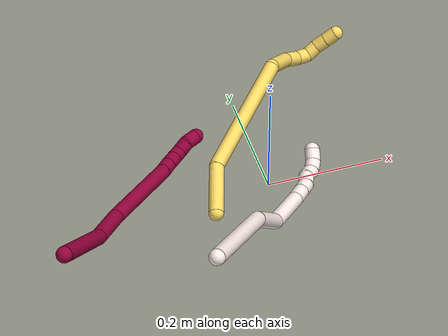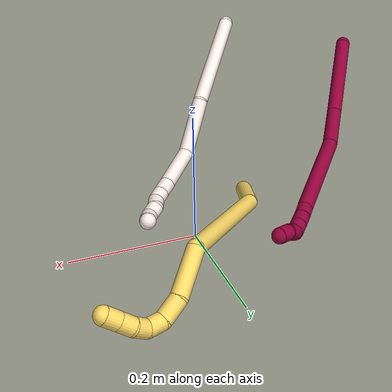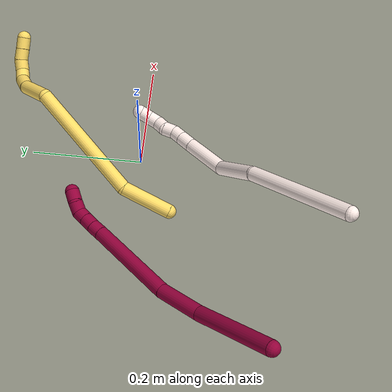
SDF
<sdf version="1.7">
 <world name="default">
  <model name="5">
   <static>0</static>
   <link name="5">
    <collision name="collision-cylinder-e_1_1_4">
     <pose>-0.000788 0.016716 0.040832 -0.388564 -0.017848 0.003512</pose>
     <geometry><cylinder><radius>0.0125</radius><length>0.088257</length></cylinder></geometry>
     <surface>
      <friction><ode><mu>1.16</mu><mu2>1.16</mu2><slip1>0</slip1><slip2>0</slip2></ode></friction>
      <contact><ode><kp>1e+06</kp><kd>1</kd><max_vel>0</max_vel><min_depth>0.001</min_depth></ode></contact>
     </surface>
    </collision>
    <visual name="visual-cylinder-e_1_1_4">
     <pose>-0.000788 0.016716 0.040832 -0.388564 -0.017848 0.003512</pose>
     <geometry><cylinder><radius>0.0125</radius><length>0.088257</length></cylinder></geometry>
     <material><ambient>1 0.858824 0.4 1</ambient></material>
    </visual>
    <collision name="collision-cylinder-e_2_4_5">
     <pose>0.023511 0.036523 0.188943 -0.028807 0.22962 -0.003322</pose>
     <geometry><cylinder><radius>0.0125</radius><length>0.220431</length></cylinder></geometry>
     <surface>
      <friction><ode><mu>1.16</mu><mu2>1.16</mu2><slip1>0</slip1><slip2>0</slip2></ode></friction>
      <contact><ode><kp>1e+06</kp><kd>1</kd><max_vel>0</max_vel><min_depth>0.001</min_depth></ode></contact>
     </surface>
    </collision>
    <visual name="visual-cylinder-e_2_4_5">
     <pose>0.023511 0.036523 0.188943 -0.028807 0.22962 -0.003322</pose>
     <geometry><cylinder><radius>0.0125</radius><length>0.220431</length></cylinder></geometry>
     <material><ambient>1 0.858824 0.4 1</ambient></material>
    </visual>
    <collision name="collision-cylinder-e_3_5_6">
     <pose>0.07541 0.051317 0.317301 -0.506794 0.838412 -0.229782</pose>
     <geometry><cylinder><radius>0.0125</radius><length>0.072118</length></cylinder></geometry>
     <surface>
      <friction><ode><mu>1.16</mu><mu2>1.16</mu2><slip1>0</slip1><slip2>0</slip2></ode></friction>
      <contact><ode><kp>1e+06</kp><kd>1</kd><max_vel>0</max_vel><min_depth>0.001</min_depth></ode></contact>
     </surface>
    </collision>
    <visual name="visual-cylinder-e_3_5_6">
     <pose>0.07541 0.051317 0.317301 -0.506794 0.838412 -0.229782</pose>
     <geometry><cylinder><radius>0.0125</radius><length>0.072118</length></cylinder></geometry>
     <material><ambient>1 0.858824 0.4 1</ambient></material>
    </visual>
    <collision name="collision-cylinder-e_4_6_7">
     <pose>0.115903 0.06347 0.347743 -0.048099 0.970127 -0.025355</pose>
     <geometry><cylinder><radius>0.0125</radius><length>0.033166</length></cylinder></geometry>
     <surface>
      <friction><ode><mu>1.16</mu><mu2>1.16</mu2><slip1>0</slip1><slip2>0</slip2></ode></friction>
      <contact><ode><kp>1e+06</kp><kd>1</kd><max_vel>0</max_vel><min_depth>0.001</min_depth></ode></contact>
     </surface>
    </collision>
    <visual name="visual-cylinder-e_4_6_7">
     <pose>0.115903 0.06347 0.347743 -0.048099 0.970127 -0.025355</pose>
     <geometry><cylinder><radius>0.0125</radius><length>0.033166</length></cylinder></geometry>
     <material><ambient>1 0.858824 0.4 1</ambient></material>
    </visual>
    <collision name="collision-cylinder-e_5_7_8">
     <pose>0.136808 0.059616 0.364794 0.510415 0.686753 0.186024</pose>
     <geometry><cylinder><radius>0.0125</radius><length>0.022791</length></cylinder></geometry>
     <surface>
      <friction><ode><mu>1.16</mu><mu2>1.16</mu2><slip1>0</slip1><slip2>0</slip2></ode></friction>
      <contact><ode><kp>1e+06</kp><kd>1</kd><max_vel>0</max_vel><min_depth>0.001</min_depth></ode></contact>
     </surface>
    </collision>
    <visual name="visual-cylinder-e_5_7_8">
     <pose>0.136808 0.059616 0.364794 0.510415 0.686753 0.186024</pose>
     <geometry><cylinder><radius>0.0125</radius><length>0.022791</length></cylinder></geometry>
     <material><ambient>1 0.858824 0.4 1</ambient></material>
    </visual>
    <collision name="collision-cylinder-e_6_8_9">
     <pose>0.144537 0.049441 0.381337 0.585448 0.047454 0.014304</pose>
     <geometry><cylinder><radius>0.0125</radius><length>0.02127</length></cylinder></geometry>
     <surface>
      <friction><ode><mu>1.16</mu><mu2>1.16</mu2><slip1>0</slip1><slip2>0</slip2></ode></friction>
      <contact><ode><kp>1e+06</kp><kd>1</kd><max_vel>0</max_vel><min_depth>0.001</min_depth></ode></contact>
     </surface>
    </collision>
    <visual name="visual-cylinder-e_6_8_9">
     <pose>0.144537 0.049441 0.381337 0.585448 0.047454 0.014304</pose>
     <geometry><cylinder><radius>0.0125</radius><length>0.02127</length></cylinder></geometry>
     <material><ambient>1 0.858824 0.4 1</ambient></material>
    </visual>
    <collision name="collision-cylinder-e_7_9_10">
     <pose>0.144869 0.035449 0.396914 0.879321 -0.016378 -0.007704</pose>
     <geometry><cylinder><radius>0.0125</radius><length>0.021091</length></cylinder></geometry>
     <surface>
      <friction><ode><mu>1.16</mu><mu2>1.16</mu2><slip1>0</slip1><slip2>0</slip2></ode></friction>
      <contact><ode><kp>1e+06</kp><kd>1</kd><max_vel>0</max_vel><min_depth>0.001</min_depth></ode></contact>
     </surface>
    </collision>
    <visual name="visual-cylinder-e_7_9_10">
     <pose>0.144869 0.035449 0.396914 0.879321 -0.016378 -0.007704</pose>
     <geometry><cylinder><radius>0.0125</radius><length>0.021091</length></cylinder></geometry>
     <material><ambient>1 0.858824 0.4 1</ambient></material>
    </visual>
    <collision name="collision-cylinder-e_8_10_2">
     <pose>0.144532 0.01944 0.410474 0.856637 -0.01574 -0.007187</pose>
     <geometry><cylinder><radius>0.0125</radius><length>0.020877</length></cylinder></geometry>
     <surface>
      <friction><ode><mu>1.16</mu><mu2>1.16</mu2><slip1>0</slip1><slip2>0</slip2></ode></friction>
      <contact><ode><kp>1e+06</kp><kd>1</kd><max_vel>0</max_vel><min_depth>0.001</min_depth></ode></contact>
     </surface>
    </collision>
    <visual name="visual-cylinder-e_8_10_2">
     <pose>0.144532 0.01944 0.410474 0.856637 -0.01574 -0.007187</pose>
     <geometry><cylinder><radius>0.0125</radius><length>0.020877</length></cylinder></geometry>
     <material><ambient>1 0.858824 0.4 1</ambient></material>
    </visual>
    <collision name="collision-sphere-2">
     <pose>0.144368 0.011553 0.41731 0 -0 0</pose>
     <geometry><sphere><radius>0.0125</radius></sphere></geometry>
     <surface>
      <friction><ode><mu>1.16</mu><mu2>1.16</mu2><slip1>0</slip1><slip2>0</slip2></ode></friction>
      <contact><ode><kp>1e+06</kp><kd>1</kd><max_vel>0</max_vel><min_depth>0.001</min_depth></ode></contact>
     </surface>
    </collision>
    <visual name="visual-sphere-2">
     <pose>0.144368 0.011553 0.41731 0 -0 0</pose>
     <geometry><sphere><radius>0.0125</radius></sphere></geometry>
     <material><ambient>1 0.858824 0.4 1</ambient></material>
    </visual>
    <collision name="collision-sphere-10">
     <pose>0.144696 0.027327 0.403638 0 -0 0</pose>
     <geometry><sphere><radius>0.0125</radius></sphere></geometry>
     <surface>
      <friction><ode><mu>1.16</mu><mu2>1.16</mu2><slip1>0</slip1><slip2>0</slip2></ode></friction>
      <contact><ode><kp>1e+06</kp><kd>1</kd><max_vel>0</max_vel><min_depth>0.001</min_depth></ode></contact>
     </surface>
    </collision>
    <visual name="visual-sphere-10">
     <pose>0.144696 0.027327 0.403638 0 -0 0</pose>
     <geometry><sphere><radius>0.0125</radius></sphere></geometry>
     <material><ambient>1 0.858824 0.4 1</ambient></material>
    </visual>
    <collision name="collision-sphere-9">
     <pose>0.145042 0.043571 0.39019 0 -0 0</pose>
     <geometry><sphere><radius>0.0125</radius></sphere></geometry>
     <surface>
      <friction><ode><mu>1.16</mu><mu2>1.16</mu2><slip1>0</slip1><slip2>0</slip2></ode></friction>
      <contact><ode><kp>1e+06</kp><kd>1</kd><max_vel>0</max_vel><min_depth>0.001</min_depth></ode></contact>
     </surface>
    </collision>
    <visual name="visual-sphere-9">
     <pose>0.145042 0.043571 0.39019 0 -0 0</pose>
     <geometry><sphere><radius>0.0125</radius></sphere></geometry>
     <material><ambient>1 0.858824 0.4 1</ambient></material>
    </visual>
    <collision name="collision-sphere-4">
     <pose>-0.001575 0.033432 0.081665 0 -0 0</pose>
     <geometry><sphere><radius>0.0125</radius></sphere></geometry>
     <surface>
      <friction><ode><mu>1.16</mu><mu2>1.16</mu2><slip1>0</slip1><slip2>0</slip2></ode></friction>
      <contact><ode><kp>1e+06</kp><kd>1</kd><max_vel>0</max_vel><min_depth>0.001</min_depth></ode></contact>
     </surface>
    </collision>
    <visual name="visual-sphere-4">
     <pose>-0.001575 0.033432 0.081665 0 -0 0</pose>
     <geometry><sphere><radius>0.0125</radius></sphere></geometry>
     <material><ambient>1 0.858824 0.4 1</ambient></material>
    </visual>
    <collision name="collision-sphere-1">
     <geometry><sphere><radius>0.0125</radius></sphere></geometry>
     <surface>
      <friction><ode><mu>1.16</mu><mu2>1.16</mu2><slip1>0</slip1><slip2>0</slip2></ode></friction>
      <contact><ode><kp>1e+06</kp><kd>1</kd><max_vel>0</max_vel><min_depth>0.001</min_depth></ode></contact>
     </surface>
    </collision>
    <visual name="visual-sphere-1">
     <geometry><sphere><radius>0.0125</radius></sphere></geometry>
     <material><ambient>1 0.858824 0.4 1</ambient></material>
    </visual>
    <collision name="collision-sphere-8">
     <pose>0.144033 0.055311 0.372483 0 -0 0</pose>
     <geometry><sphere><radius>0.0125</radius></sphere></geometry>
     <surface>
      <friction><ode><mu>1.16</mu><mu2>1.16</mu2><slip1>0</slip1><slip2>0</slip2></ode></friction>
      <contact><ode><kp>1e+06</kp><kd>1</kd><max_vel>0</max_vel><min_depth>0.001</min_depth></ode></contact>
     </surface>
    </collision>
    <visual name="visual-sphere-8">
     <pose>0.144033 0.055311 0.372483 0 -0 0</pose>
     <geometry><sphere><radius>0.0125</radius></sphere></geometry>
     <material><ambient>1 0.858824 0.4 1</ambient></material>
    </visual>
    <collision name="collision-sphere-5">
     <pose>0.048597 0.039614 0.296221 0 -0 0</pose>
     <geometry><sphere><radius>0.0125</radius></sphere></geometry>
     <surface>
      <friction><ode><mu>1.16</mu><mu2>1.16</mu2><slip1>0</slip1><slip2>0</slip2></ode></friction>
      <contact><ode><kp>1e+06</kp><kd>1</kd><max_vel>0</max_vel><min_depth>0.001</min_depth></ode></contact>
     </surface>
    </collision>
    <visual name="visual-sphere-5">
     <pose>0.048597 0.039614 0.296221 0 -0 0</pose>
     <geometry><sphere><radius>0.0125</radius></sphere></geometry>
     <material><ambient>1 0.858824 0.4 1</ambient></material>
    </visual>
    <collision name="collision-sphere-6">
     <pose>0.102222 0.06302 0.338381 0 -0 0</pose>
     <geometry><sphere><radius>0.0125</radius></sphere></geometry>
     <surface>
      <friction><ode><mu>1.16</mu><mu2>1.16</mu2><slip1>0</slip1><slip2>0</slip2></ode></friction>
      <contact><ode><kp>1e+06</kp><kd>1</kd><max_vel>0</max_vel><min_depth>0.001</min_depth></ode></contact>
     </surface>
    </collision>
    <visual name="visual-sphere-6">
     <pose>0.102222 0.06302 0.338381 0 -0 0</pose>
     <geometry><sphere><radius>0.0125</radius></sphere></geometry>
     <material><ambient>1 0.858824 0.4 1</ambient></material>
    </visual>
    <collision name="collision-sphere-7">
     <pose>0.129583 0.063921 0.357105 0 -0 0</pose>
     <geometry><sphere><radius>0.0125</radius></sphere></geometry>
     <surface>
      <friction><ode><mu>1.16</mu><mu2>1.16</mu2><slip1>0</slip1><slip2>0</slip2></ode></friction>
      <contact><ode><kp>1e+06</kp><kd>1</kd><max_vel>0</max_vel><min_depth>0.001</min_depth></ode></contact>
     </surface>
    </collision>
    <visual name="visual-sphere-7">
     <pose>0.129583 0.063921 0.357105 0 -0 0</pose>
     <geometry><sphere><radius>0.0125</radius></sphere></geometry>
     <material><ambient>1 0.858824 0.4 1</ambient></material>
    </visual>
    <inertial>
     <pose>0.053321 0.037792 0.226069 0 -0 0</pose>
     <mass>0.5</mass>
     <inertia>
      <ixx>0.000973</ixx>
      <ixy>0</ixy>
      <ixz>0</ixz>
      <iyy>0.000992</iyy>
      <iyz>0</iyz>
      <izz>-0.000257</izz>
     </inertia>
    </inertial>
   </link>
   <pose>-0.109815 -0.063786 0.030604 -0.771186 0.963324 0.030783</pose>
  </model>
  <model name="8">
   <static>0</static>
   <link name="8">
    <collision name="collision-cylinder-e_1_1_4">
     <pose>-0.009358 -0.006427 -0.076172 3.05741 -0.121811 -1.93279</pose>
     <geometry><cylinder><radius>0.0125</radius><length>0.154027</length></cylinder></geometry>
     <surface>
      <friction><ode><mu>1.16</mu><mu2>1.16</mu2><slip1>0</slip1><slip2>0</slip2></ode></friction>
      <contact><ode><kp>1e+06</kp><kd>1</kd><max_vel>0</max_vel><min_depth>0.001</min_depth></ode></contact>
     </surface>
    </collision>
    <visual name="visual-cylinder-e_1_1_4">
     <pose>-0.009358 -0.006427 -0.076172 3.05741 -0.121811 -1.93279</pose>
     <geometry><cylinder><radius>0.0125</radius><length>0.154027</length></cylinder></geometry>
     <material><ambient>0.584314 0 0.227451 1</ambient></material>
    </visual>
    <collision name="collision-cylinder-e_2_4_5">
     <pose>-0.016435 -0.009494 -0.192215 -3.05751 0.056942 -1.19025</pose>
     <geometry><cylinder><radius>0.0125</radius><length>0.080154</length></cylinder></geometry>
     <surface>
      <friction><ode><mu>1.16</mu><mu2>1.16</mu2><slip1>0</slip1><slip2>0</slip2></ode></friction>
      <contact><ode><kp>1e+06</kp><kd>1</kd><max_vel>0</max_vel><min_depth>0.001</min_depth></ode></contact>
     </surface>
    </collision>
    <visual name="visual-cylinder-e_2_4_5">
     <pose>-0.016435 -0.009494 -0.192215 -3.05751 0.056942 -1.19025</pose>
     <geometry><cylinder><radius>0.0125</radius><length>0.080154</length></cylinder></geometry>
     <material><ambient>0.584314 0 0.227451 1</ambient></material>
    </visual>
    <collision name="collision-cylinder-e_3_5_6">
     <pose>0.00576 -0.002359 -0.312035 -3.09442 0.243856 -2.76116</pose>
     <geometry><cylinder><radius>0.0125</radius><length>0.164957</length></cylinder></geometry>
     <surface>
      <friction><ode><mu>1.16</mu><mu2>1.16</mu2><slip1>0</slip1><slip2>0</slip2></ode></friction>
      <contact><ode><kp>1e+06</kp><kd>1</kd><max_vel>0</max_vel><min_depth>0.001</min_depth></ode></contact>
     </surface>
    </collision>
    <visual name="visual-cylinder-e_3_5_6">
     <pose>0.00576 -0.002359 -0.312035 -3.09442 0.243856 -2.76116</pose>
     <geometry><cylinder><radius>0.0125</radius><length>0.164957</length></cylinder></geometry>
     <material><ambient>0.584314 0 0.227451 1</ambient></material>
    </visual>
    <collision name="collision-cylinder-e_4_6_7">
     <pose>0.02857 0.003024 -0.401625 -2.97625 0.288043 -2.10342</pose>
     <geometry><cylinder><radius>0.0125</radius><length>0.020388</length></cylinder></geometry>
     <surface>
      <friction><ode><mu>1.16</mu><mu2>1.16</mu2><slip1>0</slip1><slip2>0</slip2></ode></friction>
      <contact><ode><kp>1e+06</kp><kd>1</kd><max_vel>0</max_vel><min_depth>0.001</min_depth></ode></contact>
     </surface>
    </collision>
    <visual name="visual-cylinder-e_4_6_7">
     <pose>0.02857 0.003024 -0.401625 -2.97625 0.288043 -2.10342</pose>
     <geometry><cylinder><radius>0.0125</radius><length>0.020388</length></cylinder></geometry>
     <material><ambient>0.584314 0 0.227451 1</ambient></material>
    </visual>
    <collision name="collision-cylinder-e_5_7_8">
     <pose>0.034737 0.005766 -0.420846 -3.02382 0.326961 -2.45507</pose>
     <geometry><cylinder><radius>0.0125</radius><length>0.020373</length></cylinder></geometry>
     <surface>
      <friction><ode><mu>1.16</mu><mu2>1.16</mu2><slip1>0</slip1><slip2>0</slip2></ode></friction>
      <contact><ode><kp>1e+06</kp><kd>1</kd><max_vel>0</max_vel><min_depth>0.001</min_depth></ode></contact>
     </surface>
    </collision>
    <visual name="visual-cylinder-e_5_7_8">
     <pose>0.034737 0.005766 -0.420846 -3.02382 0.326961 -2.45507</pose>
     <geometry><cylinder><radius>0.0125</radius><length>0.020373</length></cylinder></geometry>
     <material><ambient>0.584314 0 0.227451 1</ambient></material>
    </visual>
    <collision name="collision-cylinder-e_6_8_9">
     <pose>0.04122 0.008028 -0.439834 -3.02223 0.326707 -2.44602</pose>
     <geometry><cylinder><radius>0.0125</radius><length>0.02001</length></cylinder></geometry>
     <surface>
      <friction><ode><mu>1.16</mu><mu2>1.16</mu2><slip1>0</slip1><slip2>0</slip2></ode></friction>
      <contact><ode><kp>1e+06</kp><kd>1</kd><max_vel>0</max_vel><min_depth>0.001</min_depth></ode></contact>
     </surface>
    </collision>
    <visual name="visual-cylinder-e_6_8_9">
     <pose>0.04122 0.008028 -0.439834 -3.02223 0.326707 -2.44602</pose>
     <geometry><cylinder><radius>0.0125</radius><length>0.02001</length></cylinder></geometry>
     <material><ambient>0.584314 0 0.227451 1</ambient></material>
    </visual>
    <collision name="collision-cylinder-e_7_9_10">
     <pose>0.052745 0.011118 -0.454443 -2.78094 0.981497 -2.48402</pose>
     <geometry><cylinder><radius>0.0125</radius><length>0.020003</length></cylinder></geometry>
     <surface>
      <friction><ode><mu>1.16</mu><mu2>1.16</mu2><slip1>0</slip1><slip2>0</slip2></ode></friction>
      <contact><ode><kp>1e+06</kp><kd>1</kd><max_vel>0</max_vel><min_depth>0.001</min_depth></ode></contact>
     </surface>
    </collision>
    <visual name="visual-cylinder-e_7_9_10">
     <pose>0.052745 0.011118 -0.454443 -2.78094 0.981497 -2.48402</pose>
     <geometry><cylinder><radius>0.0125</radius><length>0.020003</length></cylinder></geometry>
     <material><ambient>0.584314 0 0.227451 1</ambient></material>
    </visual>
    <collision name="collision-cylinder-e_8_10_2">
     <pose>0.068132 0.012378 -0.466741 3.04306 0.781255 2.90324</pose>
     <geometry><cylinder><radius>0.0125</radius><length>0.020088</length></cylinder></geometry>
     <surface>
      <friction><ode><mu>1.16</mu><mu2>1.16</mu2><slip1>0</slip1><slip2>0</slip2></ode></friction>
      <contact><ode><kp>1e+06</kp><kd>1</kd><max_vel>0</max_vel><min_depth>0.001</min_depth></ode></contact>
     </surface>
    </collision>
    <visual name="visual-cylinder-e_8_10_2">
     <pose>0.068132 0.012378 -0.466741 3.04306 0.781255 2.90324</pose>
     <geometry><cylinder><radius>0.0125</radius><length>0.020088</length></cylinder></geometry>
     <material><ambient>0.584314 0 0.227451 1</ambient></material>
    </visual>
    <collision name="collision-sphere-2">
     <pose>0.075205 0.011676 -0.473838 0 -0 0</pose>
     <geometry><sphere><radius>0.0125</radius></sphere></geometry>
     <surface>
      <friction><ode><mu>1.16</mu><mu2>1.16</mu2><slip1>0</slip1><slip2>0</slip2></ode></friction>
      <contact><ode><kp>1e+06</kp><kd>1</kd><max_vel>0</max_vel><min_depth>0.001</min_depth></ode></contact>
     </surface>
    </collision>
    <visual name="visual-sphere-2">
     <pose>0.075205 0.011676 -0.473838 0 -0 0</pose>
     <geometry><sphere><radius>0.0125</radius></sphere></geometry>
     <material><ambient>0.584314 0 0.227451 1</ambient></material>
    </visual>
    <collision name="collision-sphere-10">
     <pose>0.06106 0.01308 -0.459644 0 -0 0</pose>
     <geometry><sphere><radius>0.0125</radius></sphere></geometry>
     <surface>
      <friction><ode><mu>1.16</mu><mu2>1.16</mu2><slip1>0</slip1><slip2>0</slip2></ode></friction>
      <contact><ode><kp>1e+06</kp><kd>1</kd><max_vel>0</max_vel><min_depth>0.001</min_depth></ode></contact>
     </surface>
    </collision>
    <visual name="visual-sphere-10">
     <pose>0.06106 0.01308 -0.459644 0 -0 0</pose>
     <geometry><sphere><radius>0.0125</radius></sphere></geometry>
     <material><ambient>0.584314 0 0.227451 1</ambient></material>
    </visual>
    <collision name="collision-sphere-9">
     <pose>0.044431 0.009156 -0.449242 0 -0 0</pose>
     <geometry><sphere><radius>0.0125</radius></sphere></geometry>
     <surface>
      <friction><ode><mu>1.16</mu><mu2>1.16</mu2><slip1>0</slip1><slip2>0</slip2></ode></friction>
      <contact><ode><kp>1e+06</kp><kd>1</kd><max_vel>0</max_vel><min_depth>0.001</min_depth></ode></contact>
     </surface>
    </collision>
    <visual name="visual-sphere-9">
     <pose>0.044431 0.009156 -0.449242 0 -0 0</pose>
     <geometry><sphere><radius>0.0125</radius></sphere></geometry>
     <material><ambient>0.584314 0 0.227451 1</ambient></material>
    </visual>
    <collision name="collision-sphere-4">
     <pose>-0.018716 -0.012855 -0.152344 0 -0 0</pose>
     <geometry><sphere><radius>0.0125</radius></sphere></geometry>
     <surface>
      <friction><ode><mu>1.16</mu><mu2>1.16</mu2><slip1>0</slip1><slip2>0</slip2></ode></friction>
      <contact><ode><kp>1e+06</kp><kd>1</kd><max_vel>0</max_vel><min_depth>0.001</min_depth></ode></contact>
     </surface>
    </collision>
    <visual name="visual-sphere-4">
     <pose>-0.018716 -0.012855 -0.152344 0 -0 0</pose>
     <geometry><sphere><radius>0.0125</radius></sphere></geometry>
     <material><ambient>0.584314 0 0.227451 1</ambient></material>
    </visual>
    <collision name="collision-sphere-1">
     <geometry><sphere><radius>0.0125</radius></sphere></geometry>
     <surface>
      <friction><ode><mu>1.16</mu><mu2>1.16</mu2><slip1>0</slip1><slip2>0</slip2></ode></friction>
      <contact><ode><kp>1e+06</kp><kd>1</kd><max_vel>0</max_vel><min_depth>0.001</min_depth></ode></contact>
     </surface>
    </collision>
    <visual name="visual-sphere-1">
     <geometry><sphere><radius>0.0125</radius></sphere></geometry>
     <material><ambient>0.584314 0 0.227451 1</ambient></material>
    </visual>
    <collision name="collision-sphere-8">
     <pose>0.038009 0.0069 -0.430426 0 -0 0</pose>
     <geometry><sphere><radius>0.0125</radius></sphere></geometry>
     <surface>
      <friction><ode><mu>1.16</mu><mu2>1.16</mu2><slip1>0</slip1><slip2>0</slip2></ode></friction>
      <contact><ode><kp>1e+06</kp><kd>1</kd><max_vel>0</max_vel><min_depth>0.001</min_depth></ode></contact>
     </surface>
    </collision>
    <visual name="visual-sphere-8">
     <pose>0.038009 0.0069 -0.430426 0 -0 0</pose>
     <geometry><sphere><radius>0.0125</radius></sphere></geometry>
     <material><ambient>0.584314 0 0.227451 1</ambient></material>
    </visual>
    <collision name="collision-sphere-5">
     <pose>-0.014154 -0.006134 -0.232086 0 -0 0</pose>
     <geometry><sphere><radius>0.0125</radius></sphere></geometry>
     <surface>
      <friction><ode><mu>1.16</mu><mu2>1.16</mu2><slip1>0</slip1><slip2>0</slip2></ode></friction>
      <contact><ode><kp>1e+06</kp><kd>1</kd><max_vel>0</max_vel><min_depth>0.001</min_depth></ode></contact>
     </surface>
    </collision>
    <visual name="visual-sphere-5">
     <pose>-0.014154 -0.006134 -0.232086 0 -0 0</pose>
     <geometry><sphere><radius>0.0125</radius></sphere></geometry>
     <material><ambient>0.584314 0 0.227451 1</ambient></material>
    </visual>
    <collision name="collision-sphere-6">
     <pose>0.025674 0.001415 -0.391985 0 -0 0</pose>
     <geometry><sphere><radius>0.0125</radius></sphere></geometry>
     <surface>
      <friction><ode><mu>1.16</mu><mu2>1.16</mu2><slip1>0</slip1><slip2>0</slip2></ode></friction>
      <contact><ode><kp>1e+06</kp><kd>1</kd><max_vel>0</max_vel><min_depth>0.001</min_depth></ode></contact>
     </surface>
    </collision>
    <visual name="visual-sphere-6">
     <pose>0.025674 0.001415 -0.391985 0 -0 0</pose>
     <geometry><sphere><radius>0.0125</radius></sphere></geometry>
     <material><ambient>0.584314 0 0.227451 1</ambient></material>
    </visual>
    <collision name="collision-sphere-7">
     <pose>0.031466 0.004633 -0.411266 0 -0 0</pose>
     <geometry><sphere><radius>0.0125</radius></sphere></geometry>
     <surface>
      <friction><ode><mu>1.16</mu><mu2>1.16</mu2><slip1>0</slip1><slip2>0</slip2></ode></friction>
      <contact><ode><kp>1e+06</kp><kd>1</kd><max_vel>0</max_vel><min_depth>0.001</min_depth></ode></contact>
     </surface>
    </collision>
    <visual name="visual-sphere-7">
     <pose>0.031466 0.004633 -0.411266 0 -0 0</pose>
     <geometry><sphere><radius>0.0125</radius></sphere></geometry>
     <material><ambient>0.584314 0 0.227451 1</ambient></material>
    </visual>
    <inertial>
     <pose>0.00546 -0.002659 -0.245282 0 -0 0</pose>
     <mass>0.5</mass>
     <inertia>
      <ixx>-0.000905</ixx>
      <ixy>0</ixy>
      <ixz>0</ixz>
      <iyy>-1.4e-05</iyy>
      <iyz>0</iyz>
      <izz>-9.3e-05</izz>
     </inertia>
    </inertial>
   </link>
   <pose>-0.388322 -0.23362 0.202607 0.879224 -0.749883 -0.111969</pose>
  </model>
  <model name="11">
   <static>0</static>
   <link name="11">
    <collision name="collision-cylinder-e_1_1_4">
     <pose>0.011166 0.006936 -0.09728 -3.07042 0.113993 -2.02587</pose>
     <geometry><cylinder><radius>0.0125</radius><length>0.196328</length></cylinder></geometry>
     <surface>
      <friction><ode><mu>1.16</mu><mu2>1.16</mu2><slip1>0</slip1><slip2>0</slip2></ode></friction>
      <contact><ode><kp>1e+06</kp><kd>1</kd><max_vel>0</max_vel><min_depth>0.001</min_depth></ode></contact>
     </surface>
    </collision>
    <visual name="visual-cylinder-e_1_1_4">
     <pose>0.011166 0.006936 -0.09728 -3.07042 0.113993 -2.02587</pose>
     <geometry><cylinder><radius>0.0125</radius><length>0.196328</length></cylinder></geometry>
     <material><ambient>1 0.933333 0.909804 1</ambient></material>
    </visual>
    <collision name="collision-cylinder-e_2_4_5">
     <pose>0.027712 0.002243 -0.241855 2.90049 0.110019 0.853293</pose>
     <geometry><cylinder><radius>0.0125</radius><length>0.097999</length></cylinder></geometry>
     <surface>
      <friction><ode><mu>1.16</mu><mu2>1.16</mu2><slip1>0</slip1><slip2>0</slip2></ode></friction>
      <contact><ode><kp>1e+06</kp><kd>1</kd><max_vel>0</max_vel><min_depth>0.001</min_depth></ode></contact>
     </surface>
    </collision>
    <visual name="visual-cylinder-e_2_4_5">
     <pose>0.027712 0.002243 -0.241855 2.90049 0.110019 0.853293</pose>
     <geometry><cylinder><radius>0.0125</radius><length>0.097999</length></cylinder></geometry>
     <material><ambient>1 0.933333 0.909804 1</ambient></material>
    </visual>
    <collision name="collision-cylinder-e_3_5_6">
     <pose>0.043178 0.001424 -0.326456 -2.85955 0.254076 -1.46529</pose>
     <geometry><cylinder><radius>0.0125</radius><length>0.08026</length></cylinder></geometry>
     <surface>
      <friction><ode><mu>1.16</mu><mu2>1.16</mu2><slip1>0</slip1><slip2>0</slip2></ode></friction>
      <contact><ode><kp>1e+06</kp><kd>1</kd><max_vel>0</max_vel><min_depth>0.001</min_depth></ode></contact>
     </surface>
    </collision>
    <visual name="visual-cylinder-e_3_5_6">
     <pose>0.043178 0.001424 -0.326456 -2.85955 0.254076 -1.46529</pose>
     <geometry><cylinder><radius>0.0125</radius><length>0.08026</length></cylinder></geometry>
     <material><ambient>1 0.933333 0.909804 1</ambient></material>
    </visual>
    <collision name="collision-cylinder-e_4_6_7">
     <pose>0.056348 0.016748 -0.375204 -2.76584 0.245601 -1.1516</pose>
     <geometry><cylinder><radius>0.0125</radius><length>0.02536</length></cylinder></geometry>
     <surface>
      <friction><ode><mu>1.16</mu><mu2>1.16</mu2><slip1>0</slip1><slip2>0</slip2></ode></friction>
      <contact><ode><kp>1e+06</kp><kd>1</kd><max_vel>0</max_vel><min_depth>0.001</min_depth></ode></contact>
     </surface>
    </collision>
    <visual name="visual-cylinder-e_4_6_7">
     <pose>0.056348 0.016748 -0.375204 -2.76584 0.245601 -1.1516</pose>
     <geometry><cylinder><radius>0.0125</radius><length>0.02536</length></cylinder></geometry>
     <material><ambient>1 0.933333 0.909804 1</ambient></material>
    </visual>
    <collision name="collision-cylinder-e_5_7_8">
     <pose>0.061878 0.024819 -0.395679 -2.76642 0.246887 -1.15786</pose>
     <geometry><cylinder><radius>0.0125</radius><length>0.020024</length></cylinder></geometry>
     <surface>
      <friction><ode><mu>1.16</mu><mu2>1.16</mu2><slip1>0</slip1><slip2>0</slip2></ode></friction>
      <contact><ode><kp>1e+06</kp><kd>1</kd><max_vel>0</max_vel><min_depth>0.001</min_depth></ode></contact>
     </surface>
    </collision>
    <visual name="visual-cylinder-e_5_7_8">
     <pose>0.061878 0.024819 -0.395679 -2.76642 0.246887 -1.15786</pose>
     <geometry><cylinder><radius>0.0125</radius><length>0.020024</length></cylinder></geometry>
     <material><ambient>1 0.933333 0.909804 1</ambient></material>
    </visual>
    <collision name="collision-cylinder-e_6_8_9">
     <pose>0.063098 0.033628 -0.413147 -2.58474 -0.122802 0.423686</pose>
     <geometry><cylinder><radius>0.0125</radius><length>0.020024</length></cylinder></geometry>
     <surface>
      <friction><ode><mu>1.16</mu><mu2>1.16</mu2><slip1>0</slip1><slip2>0</slip2></ode></friction>
      <contact><ode><kp>1e+06</kp><kd>1</kd><max_vel>0</max_vel><min_depth>0.001</min_depth></ode></contact>
     </surface>
    </collision>
    <visual name="visual-cylinder-e_6_8_9">
     <pose>0.063098 0.033628 -0.413147 -2.58474 -0.122802 0.423686</pose>
     <geometry><cylinder><radius>0.0125</radius><length>0.020024</length></cylinder></geometry>
     <material><ambient>1 0.933333 0.909804 1</ambient></material>
    </visual>
    <collision name="collision-cylinder-e_7_9_10">
     <pose>0.064909 0.041657 -0.430698 -2.84583 0.308526 -1.61367</pose>
     <geometry><cylinder><radius>0.0125</radius><length>0.020004</length></cylinder></geometry>
     <surface>
      <friction><ode><mu>1.16</mu><mu2>1.16</mu2><slip1>0</slip1><slip2>0</slip2></ode></friction>
      <contact><ode><kp>1e+06</kp><kd>1</kd><max_vel>0</max_vel><min_depth>0.001</min_depth></ode></contact>
     </surface>
    </collision>
    <visual name="visual-cylinder-e_7_9_10">
     <pose>0.064909 0.041657 -0.430698 -2.84583 0.308526 -1.61367</pose>
     <geometry><cylinder><radius>0.0125</radius><length>0.020004</length></cylinder></geometry>
     <material><ambient>1 0.933333 0.909804 1</ambient></material>
    </visual>
    <collision name="collision-cylinder-e_8_10_11">
     <pose>0.068055 0.050934 -0.447414 -2.43415 0.010883 -0.02947</pose>
     <geometry><cylinder><radius>0.0125</radius><length>0.02</length></cylinder></geometry>
     <surface>
      <friction><ode><mu>1.16</mu><mu2>1.16</mu2><slip1>0</slip1><slip2>0</slip2></ode></friction>
      <contact><ode><kp>1e+06</kp><kd>1</kd><max_vel>0</max_vel><min_depth>0.001</min_depth></ode></contact>
     </surface>
    </collision>
    <visual name="visual-cylinder-e_8_10_11">
     <pose>0.068055 0.050934 -0.447414 -2.43415 0.010883 -0.02947</pose>
     <geometry><cylinder><radius>0.0125</radius><length>0.02</length></cylinder></geometry>
     <material><ambient>1 0.933333 0.909804 1</ambient></material>
    </visual>
    <collision name="collision-cylinder-e_9_11_2">
     <pose>0.066763 0.066358 -0.459302 -2.01861 -0.140516 0.222826</pose>
     <geometry><cylinder><radius>0.0125</radius><length>0.020001</length></cylinder></geometry>
     <surface>
      <friction><ode><mu>1.16</mu><mu2>1.16</mu2><slip1>0</slip1><slip2>0</slip2></ode></friction>
      <contact><ode><kp>1e+06</kp><kd>1</kd><max_vel>0</max_vel><min_depth>0.001</min_depth></ode></contact>
     </surface>
    </collision>
    <visual name="visual-cylinder-e_9_11_2">
     <pose>0.066763 0.066358 -0.459302 -2.01861 -0.140516 0.222826</pose>
     <geometry><cylinder><radius>0.0125</radius><length>0.020001</length></cylinder></geometry>
     <material><ambient>1 0.933333 0.909804 1</ambient></material>
    </visual>
    <collision name="collision-sphere-2">
     <pose>0.065363 0.075284 -0.463589 0 -0 0</pose>
     <geometry><sphere><radius>0.0125</radius></sphere></geometry>
     <surface>
      <friction><ode><mu>1.16</mu><mu2>1.16</mu2><slip1>0</slip1><slip2>0</slip2></ode></friction>
      <contact><ode><kp>1e+06</kp><kd>1</kd><max_vel>0</max_vel><min_depth>0.001</min_depth></ode></contact>
     </surface>
    </collision>
    <visual name="visual-sphere-2">
     <pose>0.065363 0.075284 -0.463589 0 -0 0</pose>
     <geometry><sphere><radius>0.0125</radius></sphere></geometry>
     <material><ambient>1 0.933333 0.909804 1</ambient></material>
    </visual>
    <collision name="collision-sphere-11">
     <pose>0.068164 0.057432 -0.455014 0 -0 0</pose>
     <geometry><sphere><radius>0.0125</radius></sphere></geometry>
     <surface>
      <friction><ode><mu>1.16</mu><mu2>1.16</mu2><slip1>0</slip1><slip2>0</slip2></ode></friction>
      <contact><ode><kp>1e+06</kp><kd>1</kd><max_vel>0</max_vel><min_depth>0.001</min_depth></ode></contact>
     </surface>
    </collision>
    <visual name="visual-sphere-11">
     <pose>0.068164 0.057432 -0.455014 0 -0 0</pose>
     <geometry><sphere><radius>0.0125</radius></sphere></geometry>
     <material><ambient>1 0.933333 0.909804 1</ambient></material>
    </visual>
    <collision name="collision-sphere-10">
     <pose>0.067946 0.044435 -0.439814 0 -0 0</pose>
     <geometry><sphere><radius>0.0125</radius></sphere></geometry>
     <surface>
      <friction><ode><mu>1.16</mu><mu2>1.16</mu2><slip1>0</slip1><slip2>0</slip2></ode></friction>
      <contact><ode><kp>1e+06</kp><kd>1</kd><max_vel>0</max_vel><min_depth>0.001</min_depth></ode></contact>
     </surface>
    </collision>
    <visual name="visual-sphere-10">
     <pose>0.067946 0.044435 -0.439814 0 -0 0</pose>
     <geometry><sphere><radius>0.0125</radius></sphere></geometry>
     <material><ambient>1 0.933333 0.909804 1</ambient></material>
    </visual>
    <collision name="collision-sphere-9">
     <pose>0.061872 0.03888 -0.421582 0 -0 0</pose>
     <geometry><sphere><radius>0.0125</radius></sphere></geometry>
     <surface>
      <friction><ode><mu>1.16</mu><mu2>1.16</mu2><slip1>0</slip1><slip2>0</slip2></ode></friction>
      <contact><ode><kp>1e+06</kp><kd>1</kd><max_vel>0</max_vel><min_depth>0.001</min_depth></ode></contact>
     </surface>
    </collision>
    <visual name="visual-sphere-9">
     <pose>0.061872 0.03888 -0.421582 0 -0 0</pose>
     <geometry><sphere><radius>0.0125</radius></sphere></geometry>
     <material><ambient>1 0.933333 0.909804 1</ambient></material>
    </visual>
    <collision name="collision-sphere-4">
     <pose>0.022332 0.013871 -0.19456 0 -0 0</pose>
     <geometry><sphere><radius>0.0125</radius></sphere></geometry>
     <surface>
      <friction><ode><mu>1.16</mu><mu2>1.16</mu2><slip1>0</slip1><slip2>0</slip2></ode></friction>
      <contact><ode><kp>1e+06</kp><kd>1</kd><max_vel>0</max_vel><min_depth>0.001</min_depth></ode></contact>
     </surface>
    </collision>
    <visual name="visual-sphere-4">
     <pose>0.022332 0.013871 -0.19456 0 -0 0</pose>
     <geometry><sphere><radius>0.0125</radius></sphere></geometry>
     <material><ambient>1 0.933333 0.909804 1</ambient></material>
    </visual>
    <collision name="collision-sphere-1">
     <geometry><sphere><radius>0.0125</radius></sphere></geometry>
     <surface>
      <friction><ode><mu>1.16</mu><mu2>1.16</mu2><slip1>0</slip1><slip2>0</slip2></ode></friction>
      <contact><ode><kp>1e+06</kp><kd>1</kd><max_vel>0</max_vel><min_depth>0.001</min_depth></ode></contact>
     </surface>
    </collision>
    <visual name="visual-sphere-1">
     <geometry><sphere><radius>0.0125</radius></sphere></geometry>
     <material><ambient>1 0.933333 0.909804 1</ambient></material>
    </visual>
    <collision name="collision-sphere-8">
     <pose>0.064325 0.028377 -0.404712 0 -0 0</pose>
     <geometry><sphere><radius>0.0125</radius></sphere></geometry>
     <surface>
      <friction><ode><mu>1.16</mu><mu2>1.16</mu2><slip1>0</slip1><slip2>0</slip2></ode></friction>
      <contact><ode><kp>1e+06</kp><kd>1</kd><max_vel>0</max_vel><min_depth>0.001</min_depth></ode></contact>
     </surface>
    </collision>
    <visual name="visual-sphere-8">
     <pose>0.064325 0.028377 -0.404712 0 -0 0</pose>
     <geometry><sphere><radius>0.0125</radius></sphere></geometry>
     <material><ambient>1 0.933333 0.909804 1</ambient></material>
    </visual>
    <collision name="collision-sphere-5">
     <pose>0.033092 -0.009386 -0.28915 0 -0 0</pose>
     <geometry><sphere><radius>0.0125</radius></sphere></geometry>
     <surface>
      <friction><ode><mu>1.16</mu><mu2>1.16</mu2><slip1>0</slip1><slip2>0</slip2></ode></friction>
      <contact><ode><kp>1e+06</kp><kd>1</kd><max_vel>0</max_vel><min_depth>0.001</min_depth></ode></contact>
     </surface>
    </collision>
    <visual name="visual-sphere-5">
     <pose>0.033092 -0.009386 -0.28915 0 -0 0</pose>
     <geometry><sphere><radius>0.0125</radius></sphere></geometry>
     <material><ambient>1 0.933333 0.909804 1</ambient></material>
    </visual>
    <collision name="collision-sphere-6">
     <pose>0.053265 0.012235 -0.363763 0 -0 0</pose>
     <geometry><sphere><radius>0.0125</radius></sphere></geometry>
     <surface>
      <friction><ode><mu>1.16</mu><mu2>1.16</mu2><slip1>0</slip1><slip2>0</slip2></ode></friction>
      <contact><ode><kp>1e+06</kp><kd>1</kd><max_vel>0</max_vel><min_depth>0.001</min_depth></ode></contact>
     </surface>
    </collision>
    <visual name="visual-sphere-6">
     <pose>0.053265 0.012235 -0.363763 0 -0 0</pose>
     <geometry><sphere><radius>0.0125</radius></sphere></geometry>
     <material><ambient>1 0.933333 0.909804 1</ambient></material>
    </visual>
    <collision name="collision-sphere-7">
     <pose>0.059431 0.021262 -0.386646 0 -0 0</pose>
     <geometry><sphere><radius>0.0125</radius></sphere></geometry>
     <surface>
      <friction><ode><mu>1.16</mu><mu2>1.16</mu2><slip1>0</slip1><slip2>0</slip2></ode></friction>
      <contact><ode><kp>1e+06</kp><kd>1</kd><max_vel>0</max_vel><min_depth>0.001</min_depth></ode></contact>
     </surface>
    </collision>
    <visual name="visual-sphere-7">
     <pose>0.059431 0.021262 -0.386646 0 -0 0</pose>
     <geometry><sphere><radius>0.0125</radius></sphere></geometry>
     <material><ambient>1 0.933333 0.909804 1</ambient></material>
    </visual>
    <inertial>
     <pose>0.032599 0.01294 -0.242926 0 -0 0</pose>
     <mass>0.5</mass>
     <inertia>
      <ixx>-0.000766</ixx>
      <ixy>0</ixy>
      <ixz>0</ixz>
      <iyy>-0.000322</iyy>
      <iyz>0</iyz>
      <izz>-0.000173</izz>
     </inertia>
    </inertial>
   </link>
   <pose>-0.18865 -0.333828 0.237961 0.975906 -0.116256 -0.457354</pose>
  </model>
 </world>
</sdf>
